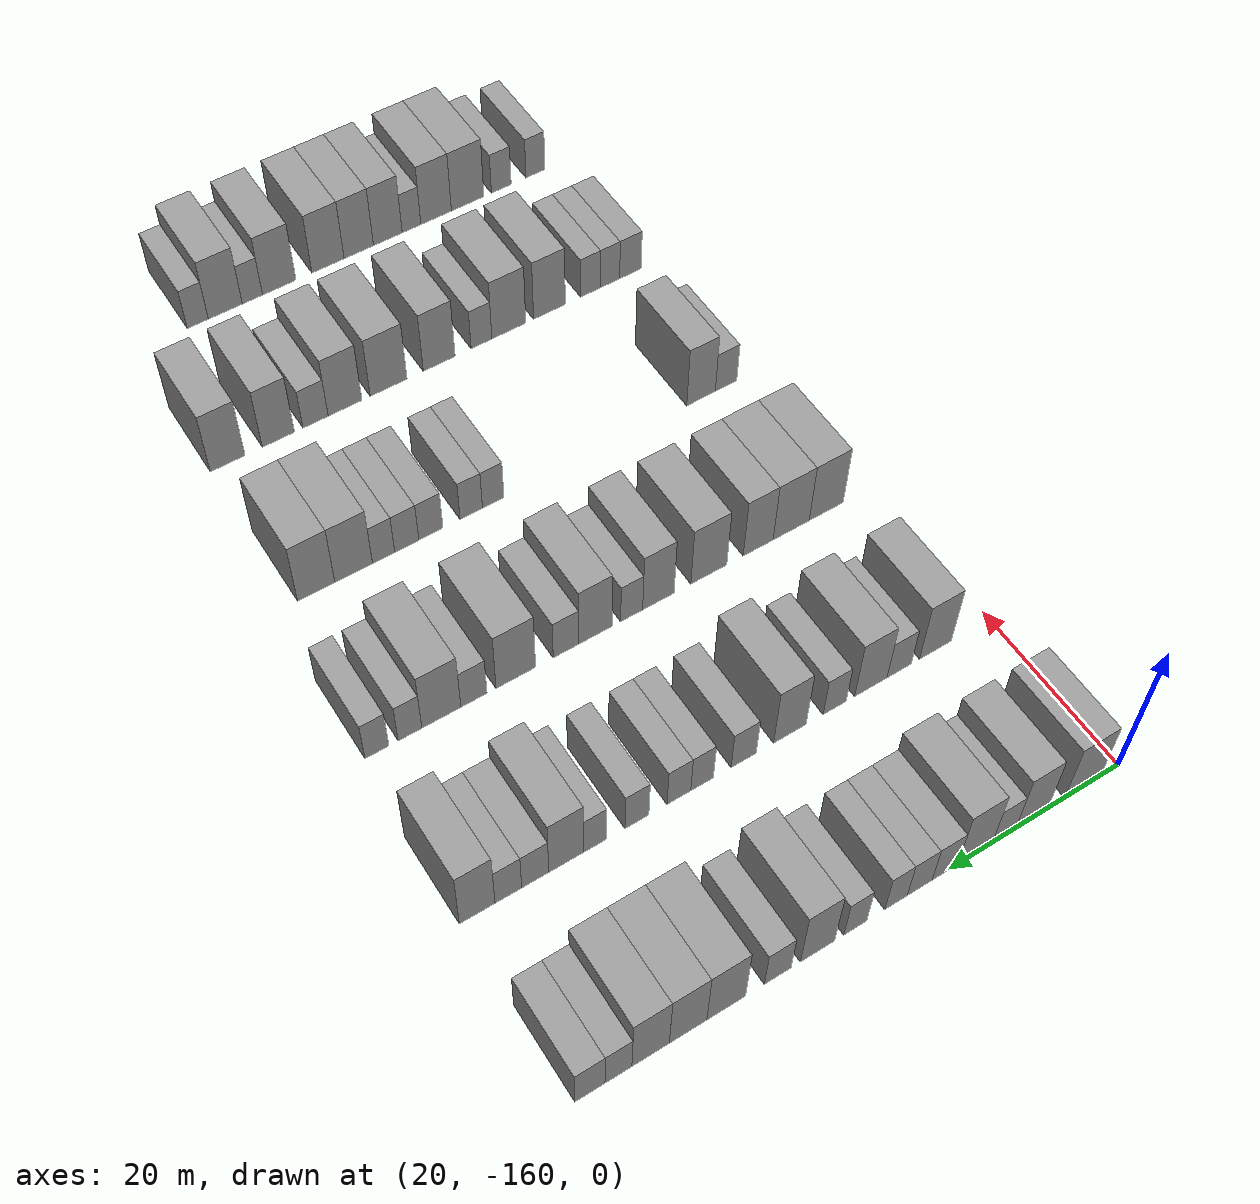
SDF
<sdf version="1.6">
 <world name="default">
  <model name="building_48">
   <static>1</static>
   <pose>25.0000 -155.7298 0 0.000000 0.000000 0.000000</pose>
   <link name="link">
    <pose>0 0 4.50 0 0 0</pose>
    <collision name="collision"><geometry><box><size>10.0000 4.3605 9.0000</size></box></geometry></collision>
    <visual name="visual">
     <cast_shadows>0</cast_shadows>
     <geometry><box><size>10.0000 4.3605 9.0000</size></box></geometry>
     <material>
      <script>
       <uri>model://grey_wall/materials/scripts</uri>
       <uri>model://grey_wall/materials/textures</uri>
       <name>vrc/grey_wall</name>
      </script>
     </material>
    </visual>
   </link>
  </model>
  <model name="building_49">
   <static>1</static>
   <pose>25.0000 -149.6635 0 0.000000 0.000000 0.000000</pose>
   <link name="link">
    <pose>0 0 4.50 0 0 0</pose>
    <collision name="collision"><geometry><box><size>10.0000 3.7723 9.0000</size></box></geometry></collision>
    <visual name="visual">
     <cast_shadows>0</cast_shadows>
     <geometry><box><size>10.0000 3.7723 9.0000</size></box></geometry>
     <material>
      <script>
       <uri>model://grey_wall/materials/scripts</uri>
       <uri>model://grey_wall/materials/textures</uri>
       <name>vrc/grey_wall</name>
      </script>
     </material>
    </visual>
   </link>
  </model>
  <model name="building_50">
   <static>1</static>
   <pose>25.0000 -146.4095 0 0.000000 0.000000 0.000000</pose>
   <link name="link">
    <pose>0 0 3.00 0 0 0</pose>
    <collision name="collision"><geometry><box><size>10.0000 2.7356 6.0000</size></box></geometry></collision>
    <visual name="visual">
     <cast_shadows>0</cast_shadows>
     <geometry><box><size>10.0000 2.7356 6.0000</size></box></geometry>
     <material>
      <script>
       <uri>model://grey_wall/materials/scripts</uri>
       <uri>model://grey_wall/materials/textures</uri>
       <name>vrc/grey_wall</name>
      </script>
     </material>
    </visual>
   </link>
  </model>
  <model name="building_51">
   <static>1</static>
   <pose>25.0000 -143.0372 0 0.000000 0.000000 0.000000</pose>
   <link name="link">
    <pose>0 0 4.50 0 0 0</pose>
    <collision name="collision"><geometry><box><size>10.0000 4.0091 9.0000</size></box></geometry></collision>
    <visual name="visual">
     <cast_shadows>0</cast_shadows>
     <geometry><box><size>10.0000 4.0091 9.0000</size></box></geometry>
     <material>
      <script>
       <uri>model://grey_wall/materials/scripts</uri>
       <uri>model://grey_wall/materials/textures</uri>
       <name>vrc/grey_wall</name>
      </script>
     </material>
    </visual>
   </link>
  </model>
  <model name="building_52">
   <static>1</static>
   <pose>25.0000 -139.5609 0 0.000000 0.000000 0.000000</pose>
   <link name="link">
    <pose>0 0 3.00 0 0 0</pose>
    <collision name="collision"><geometry><box><size>10.0000 2.9435 6.0000</size></box></geometry></collision>
    <visual name="visual">
     <cast_shadows>0</cast_shadows>
     <geometry><box><size>10.0000 2.9435 6.0000</size></box></geometry>
     <material>
      <script>
       <uri>model://grey_wall/materials/scripts</uri>
       <uri>model://grey_wall/materials/textures</uri>
       <name>vrc/grey_wall</name>
      </script>
     </material>
    </visual>
   </link>
  </model>
  <model name="building_53">
   <static>1</static>
   <pose>25.0000 -136.6943 0 0.000000 0.000000 0.000000</pose>
   <link name="link">
    <pose>0 0 3.00 0 0 0</pose>
    <collision name="collision"><geometry><box><size>10.0000 2.7898 6.0000</size></box></geometry></collision>
    <visual name="visual">
     <cast_shadows>0</cast_shadows>
     <geometry><box><size>10.0000 2.7898 6.0000</size></box></geometry>
     <material>
      <script>
       <uri>model://grey_wall/materials/scripts</uri>
       <uri>model://grey_wall/materials/textures</uri>
       <name>vrc/grey_wall</name>
      </script>
     </material>
    </visual>
   </link>
  </model>
  <model name="building_54">
   <static>1</static>
   <pose>25.0000 -134.0482 0 0.000000 0.000000 0.000000</pose>
   <link name="link">
    <pose>0 0 3.00 0 0 0</pose>
    <collision name="collision"><geometry><box><size>10.0000 2.5023 6.0000</size></box></geometry></collision>
    <visual name="visual">
     <cast_shadows>0</cast_shadows>
     <geometry><box><size>10.0000 2.5023 6.0000</size></box></geometry>
     <material>
      <script>
       <uri>model://grey_wall/materials/scripts</uri>
       <uri>model://grey_wall/materials/textures</uri>
       <name>vrc/grey_wall</name>
      </script>
     </material>
    </visual>
   </link>
  </model>
  <model name="building_55">
   <static>1</static>
   <pose>25.0000 -129.5358 0 0.000000 0.000000 0.000000</pose>
   <link name="link">
    <pose>0 0 3.00 0 0 0</pose>
    <collision name="collision"><geometry><box><size>10.0000 2.5225 6.0000</size></box></geometry></collision>
    <visual name="visual">
     <cast_shadows>0</cast_shadows>
     <geometry><box><size>10.0000 2.5225 6.0000</size></box></geometry>
     <material>
      <script>
       <uri>model://grey_wall/materials/scripts</uri>
       <uri>model://grey_wall/materials/textures</uri>
       <name>vrc/grey_wall</name>
      </script>
     </material>
    </visual>
   </link>
  </model>
  <model name="building_56">
   <static>1</static>
   <pose>25.0000 -125.4137 0 0.000000 0.000000 0.000000</pose>
   <link name="link">
    <pose>0 0 4.50 0 0 0</pose>
    <collision name="collision"><geometry><box><size>10.0000 3.7218 9.0000</size></box></geometry></collision>
    <visual name="visual">
     <cast_shadows>0</cast_shadows>
     <geometry><box><size>10.0000 3.7218 9.0000</size></box></geometry>
     <material>
      <script>
       <uri>model://grey_wall/materials/scripts</uri>
       <uri>model://grey_wall/materials/textures</uri>
       <name>vrc/grey_wall</name>
      </script>
     </material>
    </visual>
   </link>
  </model>
  <model name="building_57">
   <static>1</static>
   <pose>25.0000 -121.1268 0 0.000000 0.000000 0.000000</pose>
   <link name="link">
    <pose>0 0 3.00 0 0 0</pose>
    <collision name="collision"><geometry><box><size>10.0000 2.8519 6.0000</size></box></geometry></collision>
    <visual name="visual">
     <cast_shadows>0</cast_shadows>
     <geometry><box><size>10.0000 2.8519 6.0000</size></box></geometry>
     <material>
      <script>
       <uri>model://grey_wall/materials/scripts</uri>
       <uri>model://grey_wall/materials/textures</uri>
       <name>vrc/grey_wall</name>
      </script>
     </material>
    </visual>
   </link>
  </model>
  <model name="building_58">
   <static>1</static>
   <pose>25.0000 -115.6798 0 0.000000 0.000000 0.000000</pose>
   <link name="link">
    <pose>0 0 4.50 0 0 0</pose>
    <collision name="collision"><geometry><box><size>10.0000 4.0421 9.0000</size></box></geometry></collision>
    <visual name="visual">
     <cast_shadows>0</cast_shadows>
     <geometry><box><size>10.0000 4.0421 9.0000</size></box></geometry>
     <material>
      <script>
       <uri>model://grey_wall/materials/scripts</uri>
       <uri>model://grey_wall/materials/textures</uri>
       <name>vrc/grey_wall</name>
      </script>
     </material>
    </visual>
   </link>
  </model>
  <model name="building_59">
   <static>1</static>
   <pose>25.0000 -111.7224 0 0.000000 0.000000 0.000000</pose>
   <link name="link">
    <pose>0 0 4.50 0 0 0</pose>
    <collision name="collision"><geometry><box><size>10.0000 3.8728 9.0000</size></box></geometry></collision>
    <visual name="visual">
     <cast_shadows>0</cast_shadows>
     <geometry><box><size>10.0000 3.8728 9.0000</size></box></geometry>
     <material>
      <script>
       <uri>model://grey_wall/materials/scripts</uri>
       <uri>model://grey_wall/materials/textures</uri>
       <name>vrc/grey_wall</name>
      </script>
     </material>
    </visual>
   </link>
  </model>
  <model name="building_60">
   <static>1</static>
   <pose>25.0000 -107.8807 0 0.000000 0.000000 0.000000</pose>
   <link name="link">
    <pose>0 0 4.50 0 0 0</pose>
    <collision name="collision"><geometry><box><size>10.0000 3.8105 9.0000</size></box></geometry></collision>
    <visual name="visual">
     <cast_shadows>0</cast_shadows>
     <geometry><box><size>10.0000 3.8105 9.0000</size></box></geometry>
     <material>
      <script>
       <uri>model://grey_wall/materials/scripts</uri>
       <uri>model://grey_wall/materials/textures</uri>
       <name>vrc/grey_wall</name>
      </script>
     </material>
    </visual>
   </link>
  </model>
  <model name="building_61">
   <static>1</static>
   <pose>25.0000 -104.6251 0 0.000000 0.000000 0.000000</pose>
   <link name="link">
    <pose>0 0 3.00 0 0 0</pose>
    <collision name="collision"><geometry><box><size>10.0000 2.7008 6.0000</size></box></geometry></collision>
    <visual name="visual">
     <cast_shadows>0</cast_shadows>
     <geometry><box><size>10.0000 2.7008 6.0000</size></box></geometry>
     <material>
      <script>
       <uri>model://grey_wall/materials/scripts</uri>
       <uri>model://grey_wall/materials/textures</uri>
       <name>vrc/grey_wall</name>
      </script>
     </material>
    </visual>
   </link>
  </model>
  <model name="building_62">
   <static>1</static>
   <pose>25.0000 -101.7786 0 0.000000 0.000000 0.000000</pose>
   <link name="link">
    <pose>0 0 3.00 0 0 0</pose>
    <collision name="collision"><geometry><box><size>10.0000 2.9922 6.0000</size></box></geometry></collision>
    <visual name="visual">
     <cast_shadows>0</cast_shadows>
     <geometry><box><size>10.0000 2.9922 6.0000</size></box></geometry>
     <material>
      <script>
       <uri>model://grey_wall/materials/scripts</uri>
       <uri>model://grey_wall/materials/textures</uri>
       <name>vrc/grey_wall</name>
      </script>
     </material>
    </visual>
   </link>
  </model>
  <model name="building_225">
   <static>1</static>
   <pose>44.0000 -153.3361 0 0.000000 0.000000 0.000000</pose>
   <link name="link">
    <pose>0 0 4.50 0 0 0</pose>
    <collision name="collision"><geometry><box><size>10.0000 3.8909 9.0000</size></box></geometry></collision>
    <visual name="visual">
     <cast_shadows>0</cast_shadows>
     <geometry><box><size>10.0000 3.8909 9.0000</size></box></geometry>
     <material>
      <script>
       <uri>model://grey_wall/materials/scripts</uri>
       <uri>model://grey_wall/materials/textures</uri>
       <name>vrc/grey_wall</name>
      </script>
     </material>
    </visual>
   </link>
  </model>
  <model name="building_226">
   <static>1</static>
   <pose>44.0000 -148.9268 0 0.000000 0.000000 0.000000</pose>
   <link name="link">
    <pose>0 0 3.00 0 0 0</pose>
    <collision name="collision"><geometry><box><size>10.0000 2.9278 6.0000</size></box></geometry></collision>
    <visual name="visual">
     <cast_shadows>0</cast_shadows>
     <geometry><box><size>10.0000 2.9278 6.0000</size></box></geometry>
     <material>
      <script>
       <uri>model://grey_wall/materials/scripts</uri>
       <uri>model://grey_wall/materials/textures</uri>
       <name>vrc/grey_wall</name>
      </script>
     </material>
    </visual>
   </link>
  </model>
  <model name="building_227">
   <static>1</static>
   <pose>44.0000 -145.5281 0 0.000000 0.000000 0.000000</pose>
   <link name="link">
    <pose>0 0 4.50 0 0 0</pose>
    <collision name="collision"><geometry><box><size>10.0000 3.8696 9.0000</size></box></geometry></collision>
    <visual name="visual">
     <cast_shadows>0</cast_shadows>
     <geometry><box><size>10.0000 3.8696 9.0000</size></box></geometry>
     <material>
      <script>
       <uri>model://grey_wall/materials/scripts</uri>
       <uri>model://grey_wall/materials/textures</uri>
       <name>vrc/grey_wall</name>
      </script>
     </material>
    </visual>
   </link>
  </model>
  <model name="building_228">
   <static>1</static>
   <pose>44.0000 -141.2381 0 0.000000 0.000000 0.000000</pose>
   <link name="link">
    <pose>0 0 3.00 0 0 0</pose>
    <collision name="collision"><geometry><box><size>10.0000 2.7104 6.0000</size></box></geometry></collision>
    <visual name="visual">
     <cast_shadows>0</cast_shadows>
     <geometry><box><size>10.0000 2.7104 6.0000</size></box></geometry>
     <material>
      <script>
       <uri>model://grey_wall/materials/scripts</uri>
       <uri>model://grey_wall/materials/textures</uri>
       <name>vrc/grey_wall</name>
      </script>
     </material>
    </visual>
   </link>
  </model>
  <model name="building_229">
   <static>1</static>
   <pose>44.0000 -136.0036 0 0.000000 0.000000 0.000000</pose>
   <link name="link">
    <pose>0 0 4.50 0 0 0</pose>
    <collision name="collision"><geometry><box><size>10.0000 3.7586 9.0000</size></box></geometry></collision>
    <visual name="visual">
     <cast_shadows>0</cast_shadows>
     <geometry><box><size>10.0000 3.7586 9.0000</size></box></geometry>
     <material>
      <script>
       <uri>model://grey_wall/materials/scripts</uri>
       <uri>model://grey_wall/materials/textures</uri>
       <name>vrc/grey_wall</name>
      </script>
     </material>
    </visual>
   </link>
  </model>
  <model name="building_230">
   <static>1</static>
   <pose>44.0000 -130.6986 0 0.000000 0.000000 0.000000</pose>
   <link name="link">
    <pose>0 0 3.00 0 0 0</pose>
    <collision name="collision"><geometry><box><size>10.0000 2.8514 6.0000</size></box></geometry></collision>
    <visual name="visual">
     <cast_shadows>0</cast_shadows>
     <geometry><box><size>10.0000 2.8514 6.0000</size></box></geometry>
     <material>
      <script>
       <uri>model://grey_wall/materials/scripts</uri>
       <uri>model://grey_wall/materials/textures</uri>
       <name>vrc/grey_wall</name>
      </script>
     </material>
    </visual>
   </link>
  </model>
  <model name="building_231">
   <static>1</static>
   <pose>44.0000 -126.0085 0 0.000000 0.000000 0.000000</pose>
   <link name="link">
    <pose>0 0 3.00 0 0 0</pose>
    <collision name="collision"><geometry><box><size>10.0000 2.5288 6.0000</size></box></geometry></collision>
    <visual name="visual">
     <cast_shadows>0</cast_shadows>
     <geometry><box><size>10.0000 2.5288 6.0000</size></box></geometry>
     <material>
      <script>
       <uri>model://grey_wall/materials/scripts</uri>
       <uri>model://grey_wall/materials/textures</uri>
       <name>vrc/grey_wall</name>
      </script>
     </material>
    </visual>
   </link>
  </model>
  <model name="building_232">
   <static>1</static>
   <pose>44.0000 -123.4267 0 0.000000 0.000000 0.000000</pose>
   <link name="link">
    <pose>0 0 3.00 0 0 0</pose>
    <collision name="collision"><geometry><box><size>10.0000 2.6349 6.0000</size></box></geometry></collision>
    <visual name="visual">
     <cast_shadows>0</cast_shadows>
     <geometry><box><size>10.0000 2.6349 6.0000</size></box></geometry>
     <material>
      <script>
       <uri>model://grey_wall/materials/scripts</uri>
       <uri>model://grey_wall/materials/textures</uri>
       <name>vrc/grey_wall</name>
      </script>
     </material>
    </visual>
   </link>
  </model>
  <model name="building_233">
   <static>1</static>
   <pose>44.0000 -118.8065 0 0.000000 0.000000 0.000000</pose>
   <link name="link">
    <pose>0 0 3.00 0 0 0</pose>
    <collision name="collision"><geometry><box><size>10.0000 2.6056 6.0000</size></box></geometry></collision>
    <visual name="visual">
     <cast_shadows>0</cast_shadows>
     <geometry><box><size>10.0000 2.6056 6.0000</size></box></geometry>
     <material>
      <script>
       <uri>model://grey_wall/materials/scripts</uri>
       <uri>model://grey_wall/materials/textures</uri>
       <name>vrc/grey_wall</name>
      </script>
     </material>
    </visual>
   </link>
  </model>
  <model name="building_234">
   <static>1</static>
   <pose>44.0000 -114.2796 0 0.000000 0.000000 0.000000</pose>
   <link name="link">
    <pose>0 0 3.00 0 0 0</pose>
    <collision name="collision"><geometry><box><size>10.0000 2.4481 6.0000</size></box></geometry></collision>
    <visual name="visual">
     <cast_shadows>0</cast_shadows>
     <geometry><box><size>10.0000 2.4481 6.0000</size></box></geometry>
     <material>
      <script>
       <uri>model://grey_wall/materials/scripts</uri>
       <uri>model://grey_wall/materials/textures</uri>
       <name>vrc/grey_wall</name>
      </script>
     </material>
    </visual>
   </link>
  </model>
  <model name="building_235">
   <static>1</static>
   <pose>44.0000 -111.2006 0 0.000000 0.000000 0.000000</pose>
   <link name="link">
    <pose>0 0 4.50 0 0 0</pose>
    <collision name="collision"><geometry><box><size>10.0000 3.7098 9.0000</size></box></geometry></collision>
    <visual name="visual">
     <cast_shadows>0</cast_shadows>
     <geometry><box><size>10.0000 3.7098 9.0000</size></box></geometry>
     <material>
      <script>
       <uri>model://grey_wall/materials/scripts</uri>
       <uri>model://grey_wall/materials/textures</uri>
       <name>vrc/grey_wall</name>
      </script>
     </material>
    </visual>
   </link>
  </model>
  <model name="building_236">
   <static>1</static>
   <pose>44.0000 -107.9247 0 0.000000 0.000000 0.000000</pose>
   <link name="link">
    <pose>0 0 3.00 0 0 0</pose>
    <collision name="collision"><geometry><box><size>10.0000 2.8421 6.0000</size></box></geometry></collision>
    <visual name="visual">
     <cast_shadows>0</cast_shadows>
     <geometry><box><size>10.0000 2.8421 6.0000</size></box></geometry>
     <material>
      <script>
       <uri>model://grey_wall/materials/scripts</uri>
       <uri>model://grey_wall/materials/textures</uri>
       <name>vrc/grey_wall</name>
      </script>
     </material>
    </visual>
   </link>
  </model>
  <model name="building_237">
   <static>1</static>
   <pose>44.0000 -105.1147 0 0.000000 0.000000 0.000000</pose>
   <link name="link">
    <pose>0 0 3.00 0 0 0</pose>
    <collision name="collision"><geometry><box><size>10.0000 2.7779 6.0000</size></box></geometry></collision>
    <visual name="visual">
     <cast_shadows>0</cast_shadows>
     <geometry><box><size>10.0000 2.7779 6.0000</size></box></geometry>
     <material>
      <script>
       <uri>model://grey_wall/materials/scripts</uri>
       <uri>model://grey_wall/materials/textures</uri>
       <name>vrc/grey_wall</name>
      </script>
     </material>
    </visual>
   </link>
  </model>
  <model name="building_238">
   <static>1</static>
   <pose>44.0000 -101.8880 0 0.000000 0.000000 0.000000</pose>
   <link name="link">
    <pose>0 0 4.50 0 0 0</pose>
    <collision name="collision"><geometry><box><size>10.0000 3.6756 9.0000</size></box></geometry></collision>
    <visual name="visual">
     <cast_shadows>0</cast_shadows>
     <geometry><box><size>10.0000 3.6756 9.0000</size></box></geometry>
     <material>
      <script>
       <uri>model://grey_wall/materials/scripts</uri>
       <uri>model://grey_wall/materials/textures</uri>
       <name>vrc/grey_wall</name>
      </script>
     </material>
    </visual>
   </link>
  </model>
  <model name="building_407">
   <static>1</static>
   <pose>63.0000 -154.1290 0 0.000000 0.000000 0.000000</pose>
   <link name="link">
    <pose>0 0 4.50 0 0 0</pose>
    <collision name="collision"><geometry><box><size>10.0000 4.2769 9.0000</size></box></geometry></collision>
    <visual name="visual">
     <cast_shadows>0</cast_shadows>
     <geometry><box><size>10.0000 4.2769 9.0000</size></box></geometry>
     <material>
      <script>
       <uri>model://grey_wall/materials/scripts</uri>
       <uri>model://grey_wall/materials/textures</uri>
       <name>vrc/grey_wall</name>
      </script>
     </material>
    </visual>
   </link>
  </model>
  <model name="building_408">
   <static>1</static>
   <pose>63.0000 -149.7533 0 0.000000 0.000000 0.000000</pose>
   <link name="link">
    <pose>0 0 4.50 0 0 0</pose>
    <collision name="collision"><geometry><box><size>10.0000 4.4745 9.0000</size></box></geometry></collision>
    <visual name="visual">
     <cast_shadows>0</cast_shadows>
     <geometry><box><size>10.0000 4.4745 9.0000</size></box></geometry>
     <material>
      <script>
       <uri>model://grey_wall/materials/scripts</uri>
       <uri>model://grey_wall/materials/textures</uri>
       <name>vrc/grey_wall</name>
      </script>
     </material>
    </visual>
   </link>
  </model>
  <model name="building_409">
   <static>1</static>
   <pose>63.0000 -145.6761 0 0.000000 0.000000 0.000000</pose>
   <link name="link">
    <pose>0 0 4.50 0 0 0</pose>
    <collision name="collision"><geometry><box><size>10.0000 3.6799 9.0000</size></box></geometry></collision>
    <visual name="visual">
     <cast_shadows>0</cast_shadows>
     <geometry><box><size>10.0000 3.6799 9.0000</size></box></geometry>
     <material>
      <script>
       <uri>model://grey_wall/materials/scripts</uri>
       <uri>model://grey_wall/materials/textures</uri>
       <name>vrc/grey_wall</name>
      </script>
     </material>
    </visual>
   </link>
  </model>
  <model name="building_410">
   <static>1</static>
   <pose>63.0000 -139.6744 0 0.000000 0.000000 0.000000</pose>
   <link name="link">
    <pose>0 0 4.50 0 0 0</pose>
    <collision name="collision"><geometry><box><size>10.0000 4.3235 9.0000</size></box></geometry></collision>
    <visual name="visual">
     <cast_shadows>0</cast_shadows>
     <geometry><box><size>10.0000 4.3235 9.0000</size></box></geometry>
     <material>
      <script>
       <uri>model://grey_wall/materials/scripts</uri>
       <uri>model://grey_wall/materials/textures</uri>
       <name>vrc/grey_wall</name>
      </script>
     </material>
    </visual>
   </link>
  </model>
  <model name="building_411">
   <static>1</static>
   <pose>63.0000 -133.6558 0 0.000000 0.000000 0.000000</pose>
   <link name="link">
    <pose>0 0 4.50 0 0 0</pose>
    <collision name="collision"><geometry><box><size>10.0000 3.7137 9.0000</size></box></geometry></collision>
    <visual name="visual">
     <cast_shadows>0</cast_shadows>
     <geometry><box><size>10.0000 3.7137 9.0000</size></box></geometry>
     <material>
      <script>
       <uri>model://grey_wall/materials/scripts</uri>
       <uri>model://grey_wall/materials/textures</uri>
       <name>vrc/grey_wall</name>
      </script>
     </material>
    </visual>
   </link>
  </model>
  <model name="building_412">
   <static>1</static>
   <pose>63.0000 -130.5114 0 0.000000 0.000000 0.000000</pose>
   <link name="link">
    <pose>0 0 3.00 0 0 0</pose>
    <collision name="collision"><geometry><box><size>10.0000 2.5751 6.0000</size></box></geometry></collision>
    <visual name="visual">
     <cast_shadows>0</cast_shadows>
     <geometry><box><size>10.0000 2.5751 6.0000</size></box></geometry>
     <material>
      <script>
       <uri>model://grey_wall/materials/scripts</uri>
       <uri>model://grey_wall/materials/textures</uri>
       <name>vrc/grey_wall</name>
      </script>
     </material>
    </visual>
   </link>
  </model>
  <model name="building_413">
   <static>1</static>
   <pose>63.0000 -126.3045 0 0.000000 0.000000 0.000000</pose>
   <link name="link">
    <pose>0 0 4.50 0 0 0</pose>
    <collision name="collision"><geometry><box><size>10.0000 3.8387 9.0000</size></box></geometry></collision>
    <visual name="visual">
     <cast_shadows>0</cast_shadows>
     <geometry><box><size>10.0000 3.8387 9.0000</size></box></geometry>
     <material>
      <script>
       <uri>model://grey_wall/materials/scripts</uri>
       <uri>model://grey_wall/materials/textures</uri>
       <name>vrc/grey_wall</name>
      </script>
     </material>
    </visual>
   </link>
  </model>
  <model name="building_414">
   <static>1</static>
   <pose>63.0000 -122.9303 0 0.000000 0.000000 0.000000</pose>
   <link name="link">
    <pose>0 0 3.00 0 0 0</pose>
    <collision name="collision"><geometry><box><size>10.0000 2.9096 6.0000</size></box></geometry></collision>
    <visual name="visual">
     <cast_shadows>0</cast_shadows>
     <geometry><box><size>10.0000 2.9096 6.0000</size></box></geometry>
     <material>
      <script>
       <uri>model://grey_wall/materials/scripts</uri>
       <uri>model://grey_wall/materials/textures</uri>
       <name>vrc/grey_wall</name>
      </script>
     </material>
    </visual>
   </link>
  </model>
  <model name="building_415">
   <static>1</static>
   <pose>63.0000 -117.2627 0 0.000000 0.000000 0.000000</pose>
   <link name="link">
    <pose>0 0 4.50 0 0 0</pose>
    <collision name="collision"><geometry><box><size>10.0000 4.4257 9.0000</size></box></geometry></collision>
    <visual name="visual">
     <cast_shadows>0</cast_shadows>
     <geometry><box><size>10.0000 4.4257 9.0000</size></box></geometry>
     <material>
      <script>
       <uri>model://grey_wall/materials/scripts</uri>
       <uri>model://grey_wall/materials/textures</uri>
       <name>vrc/grey_wall</name>
      </script>
     </material>
    </visual>
   </link>
  </model>
  <model name="building_416">
   <static>1</static>
   <pose>63.0000 -112.6104 0 0.000000 0.000000 0.000000</pose>
   <link name="link">
    <pose>0 0 3.00 0 0 0</pose>
    <collision name="collision"><geometry><box><size>10.0000 2.8788 6.0000</size></box></geometry></collision>
    <visual name="visual">
     <cast_shadows>0</cast_shadows>
     <geometry><box><size>10.0000 2.8788 6.0000</size></box></geometry>
     <material>
      <script>
       <uri>model://grey_wall/materials/scripts</uri>
       <uri>model://grey_wall/materials/textures</uri>
       <name>vrc/grey_wall</name>
      </script>
     </material>
    </visual>
   </link>
  </model>
  <model name="building_417">
   <static>1</static>
   <pose>63.0000 -109.0432 0 0.000000 0.000000 0.000000</pose>
   <link name="link">
    <pose>0 0 4.50 0 0 0</pose>
    <collision name="collision"><geometry><box><size>10.0000 4.2555 9.0000</size></box></geometry></collision>
    <visual name="visual">
     <cast_shadows>0</cast_shadows>
     <geometry><box><size>10.0000 4.2555 9.0000</size></box></geometry>
     <material>
      <script>
       <uri>model://grey_wall/materials/scripts</uri>
       <uri>model://grey_wall/materials/textures</uri>
       <name>vrc/grey_wall</name>
      </script>
     </material>
    </visual>
   </link>
  </model>
  <model name="building_418">
   <static>1</static>
   <pose>63.0000 -105.6410 0 0.000000 0.000000 0.000000</pose>
   <link name="link">
    <pose>0 0 3.00 0 0 0</pose>
    <collision name="collision"><geometry><box><size>10.0000 2.5490 6.0000</size></box></geometry></collision>
    <visual name="visual">
     <cast_shadows>0</cast_shadows>
     <geometry><box><size>10.0000 2.5490 6.0000</size></box></geometry>
     <material>
      <script>
       <uri>model://grey_wall/materials/scripts</uri>
       <uri>model://grey_wall/materials/textures</uri>
       <name>vrc/grey_wall</name>
      </script>
     </material>
    </visual>
   </link>
  </model>
  <model name="building_419">
   <static>1</static>
   <pose>63.0000 -102.0917 0 0.000000 0.000000 0.000000</pose>
   <link name="link">
    <pose>0 0 3.00 0 0 0</pose>
    <collision name="collision"><geometry><box><size>10.0000 2.5496 6.0000</size></box></geometry></collision>
    <visual name="visual">
     <cast_shadows>0</cast_shadows>
     <geometry><box><size>10.0000 2.5496 6.0000</size></box></geometry>
     <material>
      <script>
       <uri>model://grey_wall/materials/scripts</uri>
       <uri>model://grey_wall/materials/textures</uri>
       <name>vrc/grey_wall</name>
      </script>
     </material>
    </visual>
   </link>
  </model>
  <model name="building_577">
   <static>1</static>
   <pose>82.0000 -154.7924 0 0.000000 0.000000 0.000000</pose>
   <link name="link">
    <pose>0 0 3.00 0 0 0</pose>
    <collision name="collision"><geometry><box><size>10.0000 2.7673 6.0000</size></box></geometry></collision>
    <visual name="visual">
     <cast_shadows>0</cast_shadows>
     <geometry><box><size>10.0000 2.7673 6.0000</size></box></geometry>
     <material>
      <script>
       <uri>model://grey_wall/materials/scripts</uri>
       <uri>model://grey_wall/materials/textures</uri>
       <name>vrc/grey_wall</name>
      </script>
     </material>
    </visual>
   </link>
  </model>
  <model name="building_578">
   <static>1</static>
   <pose>82.0000 -151.5773 0 0.000000 0.000000 0.000000</pose>
   <link name="link">
    <pose>0 0 4.50 0 0 0</pose>
    <collision name="collision"><geometry><box><size>10.0000 3.6628 9.0000</size></box></geometry></collision>
    <visual name="visual">
     <cast_shadows>0</cast_shadows>
     <geometry><box><size>10.0000 3.6628 9.0000</size></box></geometry>
     <material>
      <script>
       <uri>model://grey_wall/materials/scripts</uri>
       <uri>model://grey_wall/materials/textures</uri>
       <name>vrc/grey_wall</name>
      </script>
     </material>
    </visual>
   </link>
  </model>
  <model name="building_579">
   <static>1</static>
   <pose>82.0000 -125.9405 0 0.000000 0.000000 0.000000</pose>
   <link name="link">
    <pose>0 0 3.00 0 0 0</pose>
    <collision name="collision"><geometry><box><size>10.0000 2.5370 6.0000</size></box></geometry></collision>
    <visual name="visual">
     <cast_shadows>0</cast_shadows>
     <geometry><box><size>10.0000 2.5370 6.0000</size></box></geometry>
     <material>
      <script>
       <uri>model://grey_wall/materials/scripts</uri>
       <uri>model://grey_wall/materials/textures</uri>
       <name>vrc/grey_wall</name>
      </script>
     </material>
    </visual>
   </link>
  </model>
  <model name="building_580">
   <static>1</static>
   <pose>82.0000 -123.3530 0 0.000000 0.000000 0.000000</pose>
   <link name="link">
    <pose>0 0 3.00 0 0 0</pose>
    <collision name="collision"><geometry><box><size>10.0000 2.6380 6.0000</size></box></geometry></collision>
    <visual name="visual">
     <cast_shadows>0</cast_shadows>
     <geometry><box><size>10.0000 2.6380 6.0000</size></box></geometry>
     <material>
      <script>
       <uri>model://grey_wall/materials/scripts</uri>
       <uri>model://grey_wall/materials/textures</uri>
       <name>vrc/grey_wall</name>
      </script>
     </material>
    </visual>
   </link>
  </model>
  <model name="building_581">
   <static>1</static>
   <pose>82.0000 -118.6363 0 0.000000 0.000000 0.000000</pose>
   <link name="link">
    <pose>0 0 3.00 0 0 0</pose>
    <collision name="collision"><geometry><box><size>10.0000 2.7955 6.0000</size></box></geometry></collision>
    <visual name="visual">
     <cast_shadows>0</cast_shadows>
     <geometry><box><size>10.0000 2.7955 6.0000</size></box></geometry>
     <material>
      <script>
       <uri>model://grey_wall/materials/scripts</uri>
       <uri>model://grey_wall/materials/textures</uri>
       <name>vrc/grey_wall</name>
      </script>
     </material>
    </visual>
   </link>
  </model>
  <model name="building_582">
   <static>1</static>
   <pose>82.0000 -115.8549 0 0.000000 0.000000 0.000000</pose>
   <link name="link">
    <pose>0 0 3.00 0 0 0</pose>
    <collision name="collision"><geometry><box><size>10.0000 2.7672 6.0000</size></box></geometry></collision>
    <visual name="visual">
     <cast_shadows>0</cast_shadows>
     <geometry><box><size>10.0000 2.7672 6.0000</size></box></geometry>
     <material>
      <script>
       <uri>model://grey_wall/materials/scripts</uri>
       <uri>model://grey_wall/materials/textures</uri>
       <name>vrc/grey_wall</name>
      </script>
     </material>
    </visual>
   </link>
  </model>
  <model name="building_583">
   <static>1</static>
   <pose>82.0000 -113.2034 0 0.000000 0.000000 0.000000</pose>
   <link name="link">
    <pose>0 0 3.00 0 0 0</pose>
    <collision name="collision"><geometry><box><size>10.0000 2.5359 6.0000</size></box></geometry></collision>
    <visual name="visual">
     <cast_shadows>0</cast_shadows>
     <geometry><box><size>10.0000 2.5359 6.0000</size></box></geometry>
     <material>
      <script>
       <uri>model://grey_wall/materials/scripts</uri>
       <uri>model://grey_wall/materials/textures</uri>
       <name>vrc/grey_wall</name>
      </script>
     </material>
    </visual>
   </link>
  </model>
  <model name="building_584">
   <static>1</static>
   <pose>82.0000 -109.8106 0 0.000000 0.000000 0.000000</pose>
   <link name="link">
    <pose>0 0 4.50 0 0 0</pose>
    <collision name="collision"><geometry><box><size>10.0000 4.2496 9.0000</size></box></geometry></collision>
    <visual name="visual">
     <cast_shadows>0</cast_shadows>
     <geometry><box><size>10.0000 4.2496 9.0000</size></box></geometry>
     <material>
      <script>
       <uri>model://grey_wall/materials/scripts</uri>
       <uri>model://grey_wall/materials/textures</uri>
       <name>vrc/grey_wall</name>
      </script>
     </material>
    </visual>
   </link>
  </model>
  <model name="building_585">
   <static>1</static>
   <pose>82.0000 -105.6058 0 0.000000 0.000000 0.000000</pose>
   <link name="link">
    <pose>0 0 4.50 0 0 0</pose>
    <collision name="collision"><geometry><box><size>10.0000 4.1600 9.0000</size></box></geometry></collision>
    <visual name="visual">
     <cast_shadows>0</cast_shadows>
     <geometry><box><size>10.0000 4.1600 9.0000</size></box></geometry>
     <material>
      <script>
       <uri>model://grey_wall/materials/scripts</uri>
       <uri>model://grey_wall/materials/textures</uri>
       <name>vrc/grey_wall</name>
      </script>
     </material>
    </visual>
   </link>
  </model>
  <model name="building_756">
   <static>1</static>
   <pose>101.0000 -154.9066 0 0.000000 0.000000 0.000000</pose>
   <link name="link">
    <pose>0 0 3.00 0 0 0</pose>
    <collision name="collision"><geometry><box><size>10.0000 2.8497 6.0000</size></box></geometry></collision>
    <visual name="visual">
     <cast_shadows>0</cast_shadows>
     <geometry><box><size>10.0000 2.8497 6.0000</size></box></geometry>
     <material>
      <script>
       <uri>model://grey_wall/materials/scripts</uri>
       <uri>model://grey_wall/materials/textures</uri>
       <name>vrc/grey_wall</name>
      </script>
     </material>
    </visual>
   </link>
  </model>
  <model name="building_757">
   <static>1</static>
   <pose>101.0000 -152.2166 0 0.000000 0.000000 0.000000</pose>
   <link name="link">
    <pose>0 0 3.00 0 0 0</pose>
    <collision name="collision"><geometry><box><size>10.0000 2.5304 6.0000</size></box></geometry></collision>
    <visual name="visual">
     <cast_shadows>0</cast_shadows>
     <geometry><box><size>10.0000 2.5304 6.0000</size></box></geometry>
     <material>
      <script>
       <uri>model://grey_wall/materials/scripts</uri>
       <uri>model://grey_wall/materials/textures</uri>
       <name>vrc/grey_wall</name>
      </script>
     </material>
    </visual>
   </link>
  </model>
  <model name="building_758">
   <static>1</static>
   <pose>101.0000 -149.6558 0 0.000000 0.000000 0.000000</pose>
   <link name="link">
    <pose>0 0 3.00 0 0 0</pose>
    <collision name="collision"><geometry><box><size>10.0000 2.5912 6.0000</size></box></geometry></collision>
    <visual name="visual">
     <cast_shadows>0</cast_shadows>
     <geometry><box><size>10.0000 2.5912 6.0000</size></box></geometry>
     <material>
      <script>
       <uri>model://grey_wall/materials/scripts</uri>
       <uri>model://grey_wall/materials/textures</uri>
       <name>vrc/grey_wall</name>
      </script>
     </material>
    </visual>
   </link>
  </model>
  <model name="building_759">
   <static>1</static>
   <pose>101.0000 -144.3181 0 0.000000 0.000000 0.000000</pose>
   <link name="link">
    <pose>0 0 4.50 0 0 0</pose>
    <collision name="collision"><geometry><box><size>10.0000 4.0841 9.0000</size></box></geometry></collision>
    <visual name="visual">
     <cast_shadows>0</cast_shadows>
     <geometry><box><size>10.0000 4.0841 9.0000</size></box></geometry>
     <material>
      <script>
       <uri>model://grey_wall/materials/scripts</uri>
       <uri>model://grey_wall/materials/textures</uri>
       <name>vrc/grey_wall</name>
      </script>
     </material>
    </visual>
   </link>
  </model>
  <model name="building_760">
   <static>1</static>
   <pose>101.0000 -139.1266 0 0.000000 0.000000 0.000000</pose>
   <link name="link">
    <pose>0 0 4.50 0 0 0</pose>
    <collision name="collision"><geometry><box><size>10.0000 4.2990 9.0000</size></box></geometry></collision>
    <visual name="visual">
     <cast_shadows>0</cast_shadows>
     <geometry><box><size>10.0000 4.2990 9.0000</size></box></geometry>
     <material>
      <script>
       <uri>model://grey_wall/materials/scripts</uri>
       <uri>model://grey_wall/materials/textures</uri>
       <name>vrc/grey_wall</name>
      </script>
     </material>
    </visual>
   </link>
  </model>
  <model name="building_761">
   <static>1</static>
   <pose>101.0000 -135.6710 0 0.000000 0.000000 0.000000</pose>
   <link name="link">
    <pose>0 0 3.00 0 0 0</pose>
    <collision name="collision"><geometry><box><size>10.0000 2.6120 6.0000</size></box></geometry></collision>
    <visual name="visual">
     <cast_shadows>0</cast_shadows>
     <geometry><box><size>10.0000 2.6120 6.0000</size></box></geometry>
     <material>
      <script>
       <uri>model://grey_wall/materials/scripts</uri>
       <uri>model://grey_wall/materials/textures</uri>
       <name>vrc/grey_wall</name>
      </script>
     </material>
    </visual>
   </link>
  </model>
  <model name="building_762">
   <static>1</static>
   <pose>101.0000 -130.3977 0 0.000000 0.000000 0.000000</pose>
   <link name="link">
    <pose>0 0 4.50 0 0 0</pose>
    <collision name="collision"><geometry><box><size>10.0000 3.9348 9.0000</size></box></geometry></collision>
    <visual name="visual">
     <cast_shadows>0</cast_shadows>
     <geometry><box><size>10.0000 3.9348 9.0000</size></box></geometry>
     <material>
      <script>
       <uri>model://grey_wall/materials/scripts</uri>
       <uri>model://grey_wall/materials/textures</uri>
       <name>vrc/grey_wall</name>
      </script>
     </material>
    </visual>
   </link>
  </model>
  <model name="building_763">
   <static>1</static>
   <pose>101.0000 -124.1956 0 0.000000 0.000000 0.000000</pose>
   <link name="link">
    <pose>0 0 4.50 0 0 0</pose>
    <collision name="collision"><geometry><box><size>10.0000 4.4694 9.0000</size></box></geometry></collision>
    <visual name="visual">
     <cast_shadows>0</cast_shadows>
     <geometry><box><size>10.0000 4.4694 9.0000</size></box></geometry>
     <material>
      <script>
       <uri>model://grey_wall/materials/scripts</uri>
       <uri>model://grey_wall/materials/textures</uri>
       <name>vrc/grey_wall</name>
      </script>
     </material>
    </visual>
   </link>
  </model>
  <model name="building_764">
   <static>1</static>
   <pose>101.0000 -118.9436 0 0.000000 0.000000 0.000000</pose>
   <link name="link">
    <pose>0 0 4.50 0 0 0</pose>
    <collision name="collision"><geometry><box><size>10.0000 4.0346 9.0000</size></box></geometry></collision>
    <visual name="visual">
     <cast_shadows>0</cast_shadows>
     <geometry><box><size>10.0000 4.0346 9.0000</size></box></geometry>
     <material>
      <script>
       <uri>model://grey_wall/materials/scripts</uri>
       <uri>model://grey_wall/materials/textures</uri>
       <name>vrc/grey_wall</name>
      </script>
     </material>
    </visual>
   </link>
  </model>
  <model name="building_765">
   <static>1</static>
   <pose>101.0000 -115.4327 0 0.000000 0.000000 0.000000</pose>
   <link name="link">
    <pose>0 0 3.00 0 0 0</pose>
    <collision name="collision"><geometry><box><size>10.0000 2.9872 6.0000</size></box></geometry></collision>
    <visual name="visual">
     <cast_shadows>0</cast_shadows>
     <geometry><box><size>10.0000 2.9872 6.0000</size></box></geometry>
     <material>
      <script>
       <uri>model://grey_wall/materials/scripts</uri>
       <uri>model://grey_wall/materials/textures</uri>
       <name>vrc/grey_wall</name>
      </script>
     </material>
    </visual>
   </link>
  </model>
  <model name="building_766">
   <static>1</static>
   <pose>101.0000 -111.0563 0 0.000000 0.000000 0.000000</pose>
   <link name="link">
    <pose>0 0 4.50 0 0 0</pose>
    <collision name="collision"><geometry><box><size>10.0000 3.7656 9.0000</size></box></geometry></collision>
    <visual name="visual">
     <cast_shadows>0</cast_shadows>
     <geometry><box><size>10.0000 3.7656 9.0000</size></box></geometry>
     <material>
      <script>
       <uri>model://grey_wall/materials/scripts</uri>
       <uri>model://grey_wall/materials/textures</uri>
       <name>vrc/grey_wall</name>
      </script>
     </material>
    </visual>
   </link>
  </model>
  <model name="building_767">
   <static>1</static>
   <pose>101.0000 -105.1783 0 0.000000 0.000000 0.000000</pose>
   <link name="link">
    <pose>0 0 4.50 0 0 0</pose>
    <collision name="collision"><geometry><box><size>10.0000 3.9904 9.0000</size></box></geometry></collision>
    <visual name="visual">
     <cast_shadows>0</cast_shadows>
     <geometry><box><size>10.0000 3.9904 9.0000</size></box></geometry>
     <material>
      <script>
       <uri>model://grey_wall/materials/scripts</uri>
       <uri>model://grey_wall/materials/textures</uri>
       <name>vrc/grey_wall</name>
      </script>
     </material>
    </visual>
   </link>
  </model>
  <model name="building_927">
   <static>1</static>
   <pose>120.0000 -154.0334 0 0.000000 0.000000 0.000000</pose>
   <link name="link">
    <pose>0 0 3.00 0 0 0</pose>
    <collision name="collision"><geometry><box><size>10.0000 2.5574 6.0000</size></box></geometry></collision>
    <visual name="visual">
     <cast_shadows>0</cast_shadows>
     <geometry><box><size>10.0000 2.5574 6.0000</size></box></geometry>
     <material>
      <script>
       <uri>model://grey_wall/materials/scripts</uri>
       <uri>model://grey_wall/materials/textures</uri>
       <name>vrc/grey_wall</name>
      </script>
     </material>
    </visual>
   </link>
  </model>
  <model name="building_928">
   <static>1</static>
   <pose>120.0000 -149.4300 0 0.000000 0.000000 0.000000</pose>
   <link name="link">
    <pose>0 0 3.00 0 0 0</pose>
    <collision name="collision"><geometry><box><size>10.0000 2.6493 6.0000</size></box></geometry></collision>
    <visual name="visual">
     <cast_shadows>0</cast_shadows>
     <geometry><box><size>10.0000 2.6493 6.0000</size></box></geometry>
     <material>
      <script>
       <uri>model://grey_wall/materials/scripts</uri>
       <uri>model://grey_wall/materials/textures</uri>
       <name>vrc/grey_wall</name>
      </script>
     </material>
    </visual>
   </link>
  </model>
  <model name="building_929">
   <static>1</static>
   <pose>120.0000 -144.9519 0 0.000000 0.000000 0.000000</pose>
   <link name="link">
    <pose>0 0 4.50 0 0 0</pose>
    <collision name="collision"><geometry><box><size>10.0000 4.3070 9.0000</size></box></geometry></collision>
    <visual name="visual">
     <cast_shadows>0</cast_shadows>
     <geometry><box><size>10.0000 4.3070 9.0000</size></box></geometry>
     <material>
      <script>
       <uri>model://grey_wall/materials/scripts</uri>
       <uri>model://grey_wall/materials/textures</uri>
       <name>vrc/grey_wall</name>
      </script>
     </material>
    </visual>
   </link>
  </model>
  <model name="building_930">
   <static>1</static>
   <pose>120.0000 -140.7977 0 0.000000 0.000000 0.000000</pose>
   <link name="link">
    <pose>0 0 4.50 0 0 0</pose>
    <collision name="collision"><geometry><box><size>10.0000 4.0014 9.0000</size></box></geometry></collision>
    <visual name="visual">
     <cast_shadows>0</cast_shadows>
     <geometry><box><size>10.0000 4.0014 9.0000</size></box></geometry>
     <material>
      <script>
       <uri>model://grey_wall/materials/scripts</uri>
       <uri>model://grey_wall/materials/textures</uri>
       <name>vrc/grey_wall</name>
      </script>
     </material>
    </visual>
   </link>
  </model>
  <model name="building_931">
   <static>1</static>
   <pose>120.0000 -137.5857 0 0.000000 0.000000 0.000000</pose>
   <link name="link">
    <pose>0 0 3.00 0 0 0</pose>
    <collision name="collision"><geometry><box><size>10.0000 2.4227 6.0000</size></box></geometry></collision>
    <visual name="visual">
     <cast_shadows>0</cast_shadows>
     <geometry><box><size>10.0000 2.4227 6.0000</size></box></geometry>
     <material>
      <script>
       <uri>model://grey_wall/materials/scripts</uri>
       <uri>model://grey_wall/materials/textures</uri>
       <name>vrc/grey_wall</name>
      </script>
     </material>
    </visual>
   </link>
  </model>
  <model name="building_932">
   <static>1</static>
   <pose>120.0000 -134.5248 0 0.000000 0.000000 0.000000</pose>
   <link name="link">
    <pose>0 0 4.50 0 0 0</pose>
    <collision name="collision"><geometry><box><size>10.0000 3.6990 9.0000</size></box></geometry></collision>
    <visual name="visual">
     <cast_shadows>0</cast_shadows>
     <geometry><box><size>10.0000 3.6990 9.0000</size></box></geometry>
     <material>
      <script>
       <uri>model://grey_wall/materials/scripts</uri>
       <uri>model://grey_wall/materials/textures</uri>
       <name>vrc/grey_wall</name>
      </script>
     </material>
    </visual>
   </link>
  </model>
  <model name="building_933">
   <static>1</static>
   <pose>120.0000 -130.8039 0 0.000000 0.000000 0.000000</pose>
   <link name="link">
    <pose>0 0 4.50 0 0 0</pose>
    <collision name="collision"><geometry><box><size>10.0000 3.7430 9.0000</size></box></geometry></collision>
    <visual name="visual">
     <cast_shadows>0</cast_shadows>
     <geometry><box><size>10.0000 3.7430 9.0000</size></box></geometry>
     <material>
      <script>
       <uri>model://grey_wall/materials/scripts</uri>
       <uri>model://grey_wall/materials/textures</uri>
       <name>vrc/grey_wall</name>
      </script>
     </material>
    </visual>
   </link>
  </model>
  <model name="building_934">
   <static>1</static>
   <pose>120.0000 -126.9025 0 0.000000 0.000000 0.000000</pose>
   <link name="link">
    <pose>0 0 4.50 0 0 0</pose>
    <collision name="collision"><geometry><box><size>10.0000 4.0597 9.0000</size></box></geometry></collision>
    <visual name="visual">
     <cast_shadows>0</cast_shadows>
     <geometry><box><size>10.0000 4.0597 9.0000</size></box></geometry>
     <material>
      <script>
       <uri>model://grey_wall/materials/scripts</uri>
       <uri>model://grey_wall/materials/textures</uri>
       <name>vrc/grey_wall</name>
      </script>
     </material>
    </visual>
   </link>
  </model>
  <model name="building_935">
   <static>1</static>
   <pose>120.0000 -120.8042 0 0.000000 0.000000 0.000000</pose>
   <link name="link">
    <pose>0 0 4.50 0 0 0</pose>
    <collision name="collision"><geometry><box><size>10.0000 4.1370 9.0000</size></box></geometry></collision>
    <visual name="visual">
     <cast_shadows>0</cast_shadows>
     <geometry><box><size>10.0000 4.1370 9.0000</size></box></geometry>
     <material>
      <script>
       <uri>model://grey_wall/materials/scripts</uri>
       <uri>model://grey_wall/materials/textures</uri>
       <name>vrc/grey_wall</name>
      </script>
     </material>
    </visual>
   </link>
  </model>
  <model name="building_936">
   <static>1</static>
   <pose>120.0000 -117.4948 0 0.000000 0.000000 0.000000</pose>
   <link name="link">
    <pose>0 0 3.00 0 0 0</pose>
    <collision name="collision"><geometry><box><size>10.0000 2.4819 6.0000</size></box></geometry></collision>
    <visual name="visual">
     <cast_shadows>0</cast_shadows>
     <geometry><box><size>10.0000 2.4819 6.0000</size></box></geometry>
     <material>
      <script>
       <uri>model://grey_wall/materials/scripts</uri>
       <uri>model://grey_wall/materials/textures</uri>
       <name>vrc/grey_wall</name>
      </script>
     </material>
    </visual>
   </link>
  </model>
  <model name="building_937">
   <static>1</static>
   <pose>120.0000 -114.1851 0 0.000000 0.000000 0.000000</pose>
   <link name="link">
    <pose>0 0 4.50 0 0 0</pose>
    <collision name="collision"><geometry><box><size>10.0000 4.1375 9.0000</size></box></geometry></collision>
    <visual name="visual">
     <cast_shadows>0</cast_shadows>
     <geometry><box><size>10.0000 4.1375 9.0000</size></box></geometry>
     <material>
      <script>
       <uri>model://grey_wall/materials/scripts</uri>
       <uri>model://grey_wall/materials/textures</uri>
       <name>vrc/grey_wall</name>
      </script>
     </material>
    </visual>
   </link>
  </model>
  <model name="building_938">
   <static>1</static>
   <pose>120.0000 -110.8439 0 0.000000 0.000000 0.000000</pose>
   <link name="link">
    <pose>0 0 3.00 0 0 0</pose>
    <collision name="collision"><geometry><box><size>10.0000 2.5449 6.0000</size></box></geometry></collision>
    <visual name="visual">
     <cast_shadows>0</cast_shadows>
     <geometry><box><size>10.0000 2.5449 6.0000</size></box></geometry>
     <material>
      <script>
       <uri>model://grey_wall/materials/scripts</uri>
       <uri>model://grey_wall/materials/textures</uri>
       <name>vrc/grey_wall</name>
      </script>
     </material>
    </visual>
   </link>
  </model>
 </world>
</sdf>
